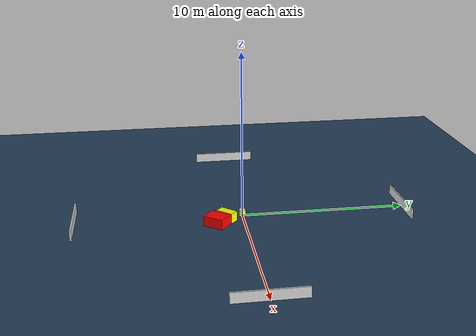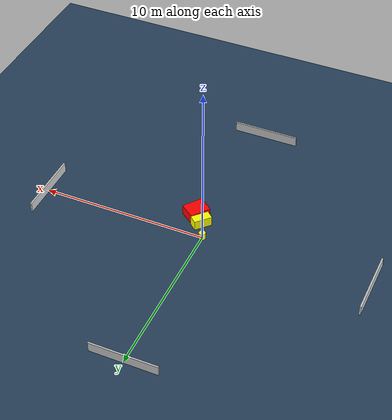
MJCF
<?xml version="1.0" ?>
<mujoco model="generated_environment">
  <option timestep="0.01" integrator="RK4" cone="elliptic"/>
  <default>
    <geom density="1"/>
  </default>
  <asset>
    <texture builtin="gradient" height="3072" name="skybox" rgb1="0.3 0.5 0.7" rgb2="0 0 0" type="skybox" width="512"/>
    <texture builtin="checker" height="300" name="groundplane" rgb1="0.2 0.3 0.4" rgb2="0.1 0.2 0.3" type="2d" width="300"/>
    <material name="groundplane" reflectance="0.2" texrepeat="5 5" texture="groundplane"/>
  </asset>
  <worldbody>
    <light dir="0 0 -1" directional="true" pos="0 0 1.5"/>
    <geom condim="3" friction="0.5 0.005 0.001" material="groundplane" name="floor" pos="0 0 0" size="0 0 0.05" type="plane"/>
    <body name="walls">
      <geom name="wall_1" condim="4" pos="-10.0 0.0 0.3" rgba="0.800000011920929 0.800000011920929 0.800000011920929 1.0" size="0.05 2.0 0.3" type="box"/>
      <geom name="wall_2" condim="4" pos="10.0 0.0 0.3" rgba="0.800000011920929 0.800000011920929 0.800000011920929 1.0" size="0.05 2.0 0.3" type="box"/>
      <geom name="wall_3" condim="4" pos="0.0 -10.0 0.3" rgba="0.800000011920929 0.800000011920929 0.800000011920929 1.0" size="2.0 0.05 0.3" type="box"/>
      <geom name="wall_4" condim="4" pos="0.0 10.0 0.3" rgba="0.800000011920929 0.800000011920929 0.800000011920929 1.0" size="2.0 0.05 0.3" type="box"/>
    </body>
    <body name="robot">
      <joint name="joint_x" type="slide" pos="0 0 0" axis="1 0 0"/>
      <joint name="joint_y" type="slide" pos="0 0 0" axis="0 1 0"/>
      <geom name="robot" type="cylinder" pos="0.0 0.0 0.2" size="0.2 0.2 0.0" mass="5.0" friction="1.0 0.005 0.0001" condim="4" rgba="1.0 1.0 0.0 1.0"/>
    </body>
    <body name="obstacle_1_movable">
      <geom name="obstacle_1_movable" condim="4" pos="0.49364526629021455 -0.995173604811199 0.3" euler="0 0 316.92406767835206" friction="0.0 0.005 0.001" rgba="1.0 1.0 0.0 1.0" size="0.2711525709059157 0.5449848890685898 0.3" type="box" mass="0.1"/>
      <joint type="free"/>
    </body>
    <body name="obstacle_2_static">
      <geom name="obstacle_2_static" condim="4" pos="1.086778823011154 -1.6368837086551844 0.3" euler="0 0 233.3830242214297" friction="0.0 0.005 0.001" rgba="1.0 0.0 0.0 1.0" size="0.6374638287787349 0.5116305014740553 0.3" type="box"/>
    </body>
  </worldbody>
  <actuator>
    <motor name="actuator_x" joint="joint_x" gear="1" ctrlrange="-1 1"/>
    <motor name="actuator_y" joint="joint_y" gear="1" ctrlrange="-1 1"/>
  </actuator>
</mujoco>
